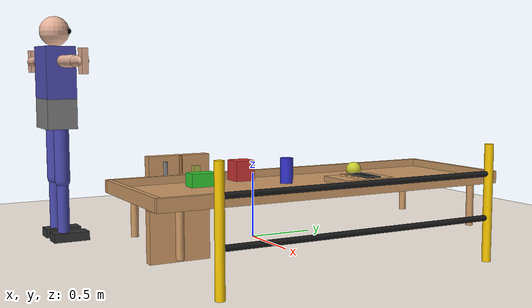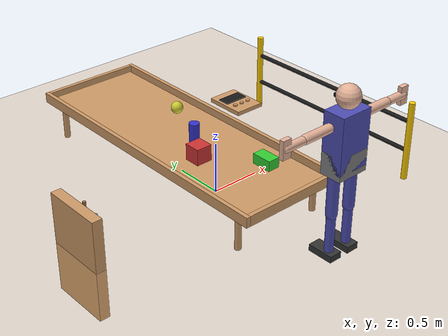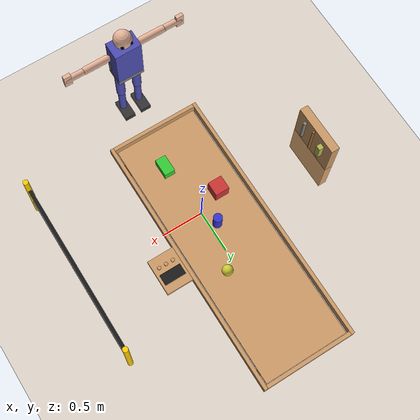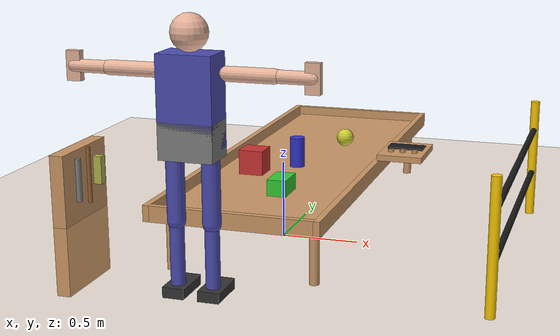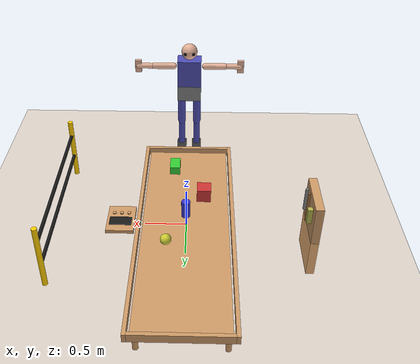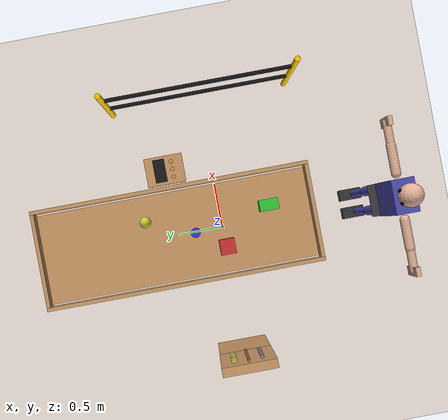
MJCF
<mujoco model="humanoid_conveyor_workspace">
  <compiler angle="degree" inertiafromgeom="true"/>
  <option timestep="0.002" gravity="0 0 -9.81" iterations="50" solver="Newton" tolerance="1e-10"/>

  <default>
    <joint limited="true" armature="0.01" damping="0.5"/>
    <geom contype="1" conaffinity="1" friction="1 0.5 0.5" rgba="0.8 0.6 0.4 1"/>
    <motor ctrllimited="true" ctrlrange="-1 1"/>
  </default>

  <asset>
    <texture name="grid" type="2d" builtin="checker" rgb1="0.1 0.1 0.1" rgb2="0.2 0.2 0.2" width="512" height="512"/>
    <texture name="skybox" type="skybox" builtin="gradient" rgb1="0.4 0.6 0.8" rgb2="0 0 0.2" width="512" height="512"/>
    <material name="floor" texture="grid" texrepeat="10 10" reflectance="0.2"/>
    <material name="belt" rgba="0.2 0.2 0.2 1" reflectance="0.1"/>
    <material name="metal" rgba="0.7 0.7 0.8 1" reflectance="0.8" shininess="0.5"/>
    <material name="plastic" rgba="0.9 0.9 0.9 1" reflectance="0.3"/>
    <material name="red_plastic" rgba="0.9 0.1 0.1 1" reflectance="0.3"/>
    <material name="blue_plastic" rgba="0.1 0.1 0.9 1" reflectance="0.3"/>
    <material name="yellow_plastic" rgba="0.9 0.9 0.1 1" reflectance="0.3"/>
  </asset>

  <worldbody>
    <!-- Lighting -->
    <light name="spot1" mode="targetbody" target="conveyor_center" pos="2 -2 3" diffuse="0.8 0.8 0.8"/>
    <light name="spot2" mode="targetbody" target="humanoid_torso" pos="-2 -2 3" diffuse="0.6 0.6 0.6"/>
    <light name="ambient" pos="0 0 5" dir="0 0 -1" diffuse="0.3 0.3 0.3"/>

    <!-- Cameras -->
    <camera name="main_camera" pos="3 -3 2.5" xyaxes="0.707 0.707 0 -0.354 0.354 0.866" fovy="45"/>
    <camera name="side_camera" pos="4 0 1.5" xyaxes="0 1 0 0 0 1" fovy="50"/>
    <camera name="top_camera" pos="0 0 5" xyaxes="1 0 0 0 1 0" fovy="60"/>
    <camera name="humanoid_pov" pos="0 -0.8 1.7" xyaxes="0 -1 0 0 0 1" fovy="70"/>
    <camera name="conveyor_closeup" pos="0 1.5 0.8" xyaxes="-1 0 0 0 -0.5 0.866" fovy="40"/>

    <!-- Ground plane -->
    <geom name="floor" type="plane" size="5 5 0.1" material="floor" contype="1" conaffinity="1"/>

    <!-- Simplified Humanoid -->
    <body name="humanoid_base" pos="0 -1.5 0">
      <!-- Pelvis -->
      <body name="pelvis" pos="0 0 1">
        <joint name="root_x" type="slide" axis="1 0 0" limited="false"/>
        <joint name="root_y" type="slide" axis="0 1 0" limited="false"/>
        <joint name="root_z" type="slide" axis="0 0 1" limited="false"/>
        <joint name="root_roll" type="hinge" axis="1 0 0" limited="false"/>
        <joint name="root_pitch" type="hinge" axis="0 1 0" limited="false"/>
        <joint name="root_yaw" type="hinge" axis="0 0 1" limited="false"/>
        <geom name="pelvis_geom" type="box" size="0.15 0.1 0.1" rgba="0.5 0.5 0.5 1"/>

        <!-- Torso -->
        <body name="humanoid_torso" pos="0 0 0.2">
          <joint name="abdomen_y" type="hinge" axis="0 1 0" range="-30 30"/>
          <joint name="abdomen_z" type="hinge" axis="0 0 1" range="-45 45"/>
          <geom name="torso_geom" type="box" size="0.15 0.1 0.25" rgba="0.3 0.3 0.7 1"/>

          <!-- Head -->
          <body name="head" pos="0 0 0.35">
            <joint name="neck_y" type="hinge" axis="0 1 0" range="-60 60"/>
            <joint name="neck_z" type="hinge" axis="0 0 1" range="-60 60"/>
            <geom name="head_geom" type="sphere" size="0.1" rgba="0.9 0.7 0.6 1"/>
            <geom name="eye_left" type="sphere" pos="0.05 0.08 0" size="0.02" rgba="0 0 0 1"/>
            <geom name="eye_right" type="sphere" pos="-0.05 0.08 0" size="0.02" rgba="0 0 0 1"/>
          </body>

          <!-- Right Arm -->
          <body name="right_shoulder" pos="0.2 0 0.15">
            <joint name="right_shoulder_y" type="hinge" axis="0 1 0" range="-85 60"/>
            <joint name="right_shoulder_z" type="hinge" axis="0 0 1" range="-60 90"/>
            <geom name="right_upper_arm" type="capsule" fromto="0 0 0 0.25 0 0" size="0.04" rgba="0.9 0.7 0.6 1"/>

            <body name="right_elbow" pos="0.25 0 0">
              <joint name="right_elbow_y" type="hinge" axis="0 1 0" range="-90 90"/>
              <geom name="right_forearm" type="capsule" fromto="0 0 0 0.2 0 0" size="0.035" rgba="0.9 0.7 0.6 1"/>

              <body name="right_hand" pos="0.2 0 0">
                <joint name="right_wrist_y" type="hinge" axis="0 1 0" range="-45 45"/>
                <joint name="right_wrist_z" type="hinge" axis="0 0 1" range="-45 45"/>
                <geom name="right_hand_geom" type="box" size="0.04 0.02 0.08" rgba="0.9 0.7 0.6 1"/>
              </body>
            </body>
          </body>

          <!-- Left Arm -->
          <body name="left_shoulder" pos="-0.2 0 0.15">
            <joint name="left_shoulder_y" type="hinge" axis="0 1 0" range="-85 60"/>
            <joint name="left_shoulder_z" type="hinge" axis="0 0 1" range="-90 60"/>
            <geom name="left_upper_arm" type="capsule" fromto="0 0 0 -0.25 0 0" size="0.04" rgba="0.9 0.7 0.6 1"/>

            <body name="left_elbow" pos="-0.25 0 0">
              <joint name="left_elbow_y" type="hinge" axis="0 1 0" range="-90 90"/>
              <geom name="left_forearm" type="capsule" fromto="0 0 0 -0.2 0 0" size="0.035" rgba="0.9 0.7 0.6 1"/>

              <body name="left_hand" pos="-0.2 0 0">
                <joint name="left_wrist_y" type="hinge" axis="0 1 0" range="-45 45"/>
                <joint name="left_wrist_z" type="hinge" axis="0 0 1" range="-45 45"/>
                <geom name="left_hand_geom" type="box" size="0.04 0.02 0.08" rgba="0.9 0.7 0.6 1"/>
              </body>
            </body>
          </body>
        </body>

        <!-- Right Leg -->
        <body name="right_hip" pos="0.1 0 -0.05">
          <joint name="right_hip_x" type="hinge" axis="1 0 0" range="-45 45"/>
          <joint name="right_hip_y" type="hinge" axis="0 1 0" range="-120 20"/>
          <joint name="right_hip_z" type="hinge" axis="0 0 1" range="-45 45"/>
          <geom name="right_thigh" type="capsule" fromto="0 0 0 0 0 -0.4" size="0.05" rgba="0.3 0.3 0.7 1"/>

          <body name="right_knee" pos="0 0 -0.4">
            <joint name="right_knee_y" type="hinge" axis="0 1 0" range="0 150"/>
            <geom name="right_shin" type="capsule" fromto="0 0 0 0 0 -0.35" size="0.04" rgba="0.3 0.3 0.7 1"/>

            <body name="right_foot" pos="0 0 -0.35">
              <joint name="right_ankle_y" type="hinge" axis="0 1 0" range="-45 45"/>
              <joint name="right_ankle_x" type="hinge" axis="1 0 0" range="-30 30"/>
              <geom name="right_foot_geom" type="box" size="0.06 0.12 0.03" pos="0 0.04 -0.03" rgba="0.2 0.2 0.2 1"/>
            </body>
          </body>
        </body>

        <!-- Left Leg -->
        <body name="left_hip" pos="-0.1 0 -0.05">
          <joint name="left_hip_x" type="hinge" axis="1 0 0" range="-45 45"/>
          <joint name="left_hip_y" type="hinge" axis="0 1 0" range="-120 20"/>
          <joint name="left_hip_z" type="hinge" axis="0 0 1" range="-45 45"/>
          <geom name="left_thigh" type="capsule" fromto="0 0 0 0 0 -0.4" size="0.05" rgba="0.3 0.3 0.7 1"/>

          <body name="left_knee" pos="0 0 -0.4">
            <joint name="left_knee_y" type="hinge" axis="0 1 0" range="0 150"/>
            <geom name="left_shin" type="capsule" fromto="0 0 0 0 0 -0.35" size="0.04" rgba="0.3 0.3 0.7 1"/>

            <body name="left_foot" pos="0 0 -0.35">
              <joint name="left_ankle_y" type="hinge" axis="0 1 0" range="-45 45"/>
              <joint name="left_ankle_x" type="hinge" axis="1 0 0" range="-30 30"/>
              <geom name="left_foot_geom" type="box" size="0.06 0.12 0.03" pos="0 0.04 -0.03" rgba="0.2 0.2 0.2 1"/>
            </body>
          </body>
        </body>
      </body>
    </body>

    <!-- Conveyor Belt System -->
    <body name="conveyor_center" pos="0 0.5 0">
      <!-- Belt Frame -->
      <geom name="frame_left" type="box" size="0.02 1.5 0.05" pos="-0.52 0 0.4" material="metal"/>
      <geom name="frame_right" type="box" size="0.02 1.5 0.05" pos="0.52 0 0.4" material="metal"/>
      <geom name="frame_front" type="box" size="0.5 0.02 0.05" pos="0 1.48 0.4" material="metal"/>
      <geom name="frame_back" type="box" size="0.5 0.02 0.05" pos="0 -1.48 0.4" material="metal"/>

      <!-- Support Structure -->
      <geom name="support_leg1" type="cylinder" fromto="-0.45 1.3 0 -0.45 1.3 0.35" size="0.03" material="metal"/>
      <geom name="support_leg2" type="cylinder" fromto="0.45 1.3 0 0.45 1.3 0.35" size="0.03" material="metal"/>
      <geom name="support_leg3" type="cylinder" fromto="-0.45 -1.3 0 -0.45 -1.3 0.35" size="0.03" material="metal"/>
      <geom name="support_leg4" type="cylinder" fromto="0.45 -1.3 0 0.45 -1.3 0.35" size="0.03" material="metal"/>

      <!-- Moving Belt (simplified as sliding platform) -->
      <body name="belt_surface" pos="0 0 0.38">
        <joint name="belt_slide" type="slide" axis="0 1 0" limited="false"/>
        <geom name="belt" type="box" size="0.48 1.45 0.01" material="belt" friction="0.8 0.02 0.01"/>
      </body>

      <!-- Control Panel -->
      <body name="control_panel" pos="0.7 0 0.5">
        <geom name="panel_base" type="box" size="0.15 0.2 0.02" material="plastic"/>
        <geom name="button_red" type="cylinder" pos="-0.08 -0.08 0.025" size="0.02 0.01" material="red_plastic"/>
        <geom name="button_blue" type="cylinder" pos="0 -0.08 0.025" size="0.02 0.01" material="blue_plastic"/>
        <geom name="button_yellow" type="cylinder" pos="0.08 -0.08 0.025" size="0.02 0.01" material="yellow_plastic"/>
        <geom name="display" type="box" pos="0 0.05 0.025" size="0.12 0.06 0.005" rgba="0.1 0.1 0.1 1"/>
      </body>
    </body>

    <!-- Objects on Conveyor Belt -->
    <body name="box1" pos="-0.2 0 0.5">
      <joint name="box1_free" type="free"/>
      <geom name="box1_geom" type="box" size="0.08 0.08 0.08" rgba="0.8 0.2 0.2 1" mass="0.5"/>
    </body>

    <body name="box2" pos="0.15 -0.5 0.5">
      <joint name="box2_free" type="free"/>
      <geom name="box2_geom" type="box" size="0.06 0.1 0.05" rgba="0.2 0.8 0.2 1" mass="0.3"/>
    </body>

    <body name="cylinder1" pos="0 0.3 0.5">
      <joint name="cylinder1_free" type="free"/>
      <geom name="cylinder1_geom" type="cylinder" size="0.05 0.1" rgba="0.2 0.2 0.8 1" mass="0.4"/>
    </body>

    <body name="sphere1" pos="0.2 0.8 0.5">
      <joint name="sphere1_free" type="free"/>
      <geom name="sphere1_geom" type="sphere" size="0.06" rgba="0.8 0.8 0.2 1" mass="0.2"/>
    </body>

    <!-- Additional Workspace Elements -->
    <body name="tool_rack" pos="-1.5 0 0">
      <geom name="rack_base" type="box" size="0.05 0.3 0.5" material="metal"/>
      <geom name="tool1" type="cylinder" pos="0.08 -0.15 0.3" size="0.02 0.15" rgba="0.5 0.5 0.5 1"/>
      <geom name="tool2" type="cylinder" pos="0.08 0 0.3" size="0.015 0.2" rgba="0.6 0.4 0.2 1"/>
      <geom name="tool3" type="box" pos="0.08 0.15 0.3" size="0.03 0.03 0.1" rgba="0.7 0.7 0.3 1"/>
    </body>

    <body name="safety_barrier" pos="1.5 0 0">
      <geom name="barrier_post1" type="cylinder" fromto="0 -1 0 0 -1 0.8" size="0.03" rgba="1 0.8 0 1"/>
      <geom name="barrier_post2" type="cylinder" fromto="0 1 0 0 1 0.8" size="0.03" rgba="1 0.8 0 1"/>
      <geom name="barrier_rail1" type="capsule" fromto="0 -1 0.6 0 1 0.6" size="0.02" rgba="0.1 0.1 0.1 1"/>
      <geom name="barrier_rail2" type="capsule" fromto="0 -1 0.3 0 1 0.3" size="0.02" rgba="0.1 0.1 0.1 1"/>
    </body>
  </worldbody>

  <actuator>
    <!-- Belt Motor -->
    <motor name="conveyor_motor" joint="belt_slide" gear="1" ctrllimited="true" ctrlrange="-2 2"/>

    <!-- Humanoid Motors (subset for demonstration) -->
    <motor name="abdomen_motor" joint="abdomen_y" gear="50"/>
    <motor name="neck_motor" joint="neck_y" gear="20"/>
    <motor name="right_shoulder_motor" joint="right_shoulder_y" gear="30"/>
    <motor name="right_elbow_motor" joint="right_elbow_y" gear="20"/>
    <motor name="left_shoulder_motor" joint="left_shoulder_y" gear="30"/>
    <motor name="left_elbow_motor" joint="left_elbow_y" gear="20"/>
    <motor name="right_hip_motor" joint="right_hip_y" gear="40"/>
    <motor name="right_knee_motor" joint="right_knee_y" gear="30"/>
    <motor name="left_hip_motor" joint="left_hip_y" gear="40"/>
    <motor name="left_knee_motor" joint="left_knee_y" gear="30"/>
  </actuator>

  <sensor>
    <!-- Belt position sensor -->
    <jointpos name="belt_position" joint="belt_slide"/>
    <jointvel name="belt_velocity" joint="belt_slide"/>

    <!-- Humanoid sensors -->
    <framepos name="head_position" objtype="body" objname="head"/>
    <framepos name="right_hand_position" objtype="body" objname="right_hand"/>
    <framepos name="left_hand_position" objtype="body" objname="left_hand"/>

    <!-- Object detection sensors -->
    <framepos name="box1_position" objtype="body" objname="box1"/>
    <framepos name="box2_position" objtype="body" objname="box2"/>
  </sensor>
</mujoco>
